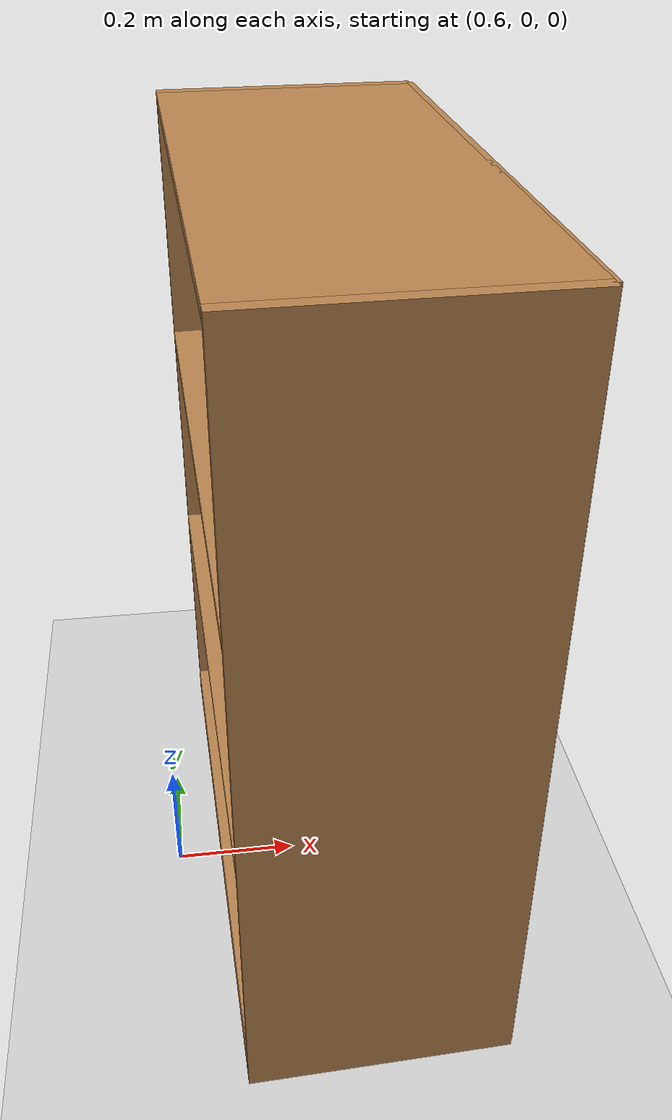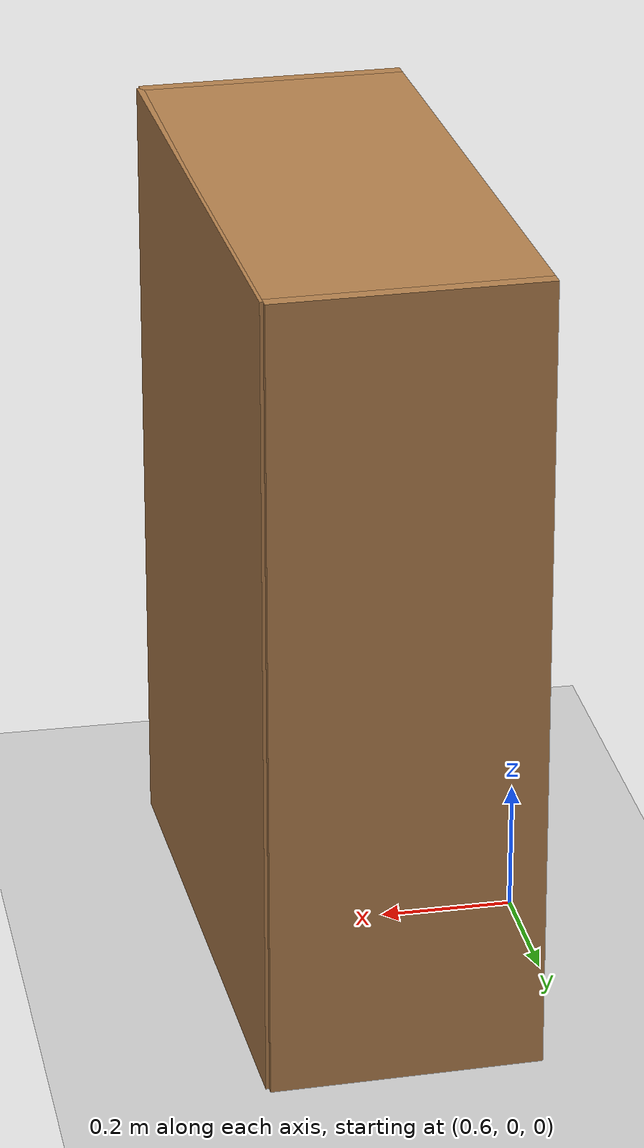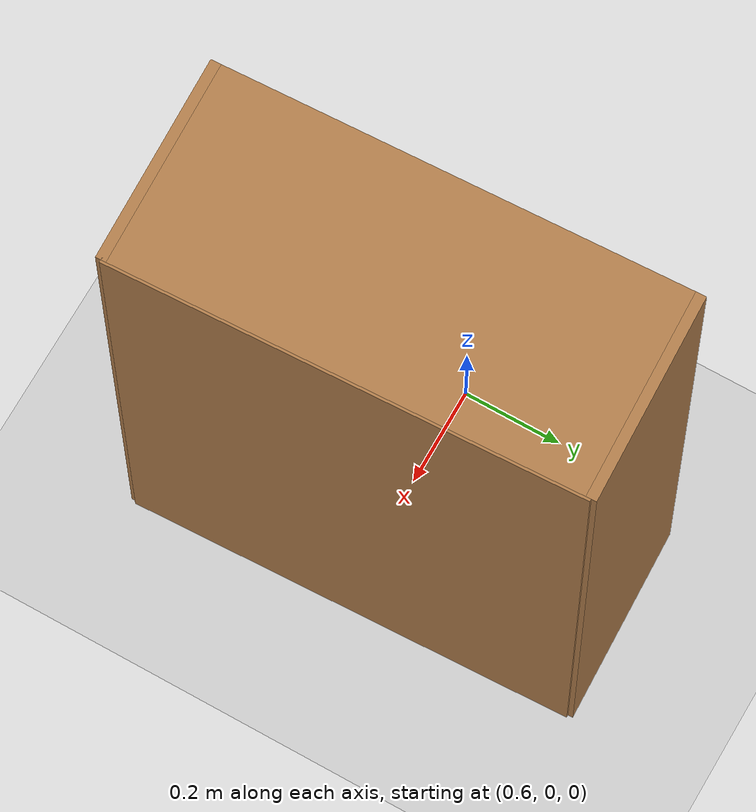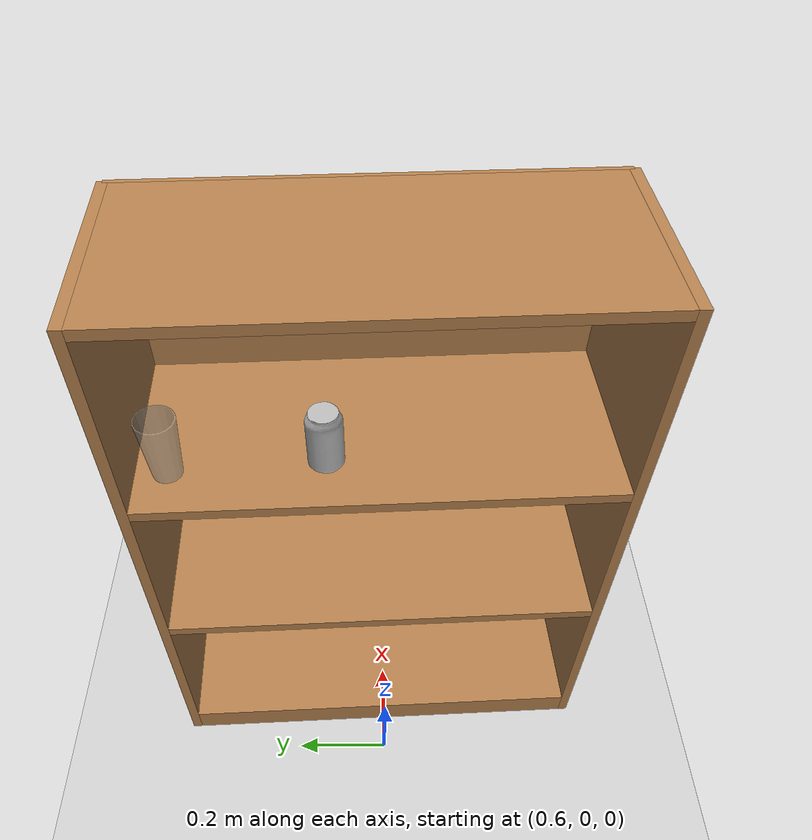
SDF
<sdf version="1.7">
 <world name="default">
  <light name="sun" type="directional">
   <pose>0 0 10 0 -0 0</pose>
   <diffuse>0.8 0.8 0.8 1</diffuse>
   <specular>0.2 0.2 0.2 1</specular>
   <attenuation>
    <range>1000</range>
    <constant>0.9</constant>
    <linear>0.01</linear>
    <quadratic>0.001</quadratic>
   </attenuation>
   <direction>-0.5 0.1 -0.9</direction>
   <spot><inner_angle>0</inner_angle><outer_angle>0</outer_angle><falloff>0</falloff></spot>
  </light>
  <model name="ground_plane">
   <static>1</static>
   <link name="link">
    <collision name="collision">
     <geometry><plane><normal>0 0 1</normal><size>100 100</size></plane></geometry>
     <surface>
      <contact><collide_bitmask>65535</collide_bitmask></contact>
      <friction><ode><mu>100</mu><mu2>50</mu2></ode></friction>
     </surface>
    </collision>
    <visual name="visual">
     <cast_shadows>0</cast_shadows>
     <geometry><plane><normal>0 0 1</normal><size>100 100</size></plane></geometry>
     <material>
      <script><uri>file://media/materials/scripts/gazebo.material</uri><name>Gazebo/Grey</name></script>
     </material>
    </visual>
   </link>
  </model>
  <gravity>0 0 -9.8</gravity>
  <magnetic_field>6e-06 2.3e-05 -4.2e-05</magnetic_field>
  <atmosphere type="adiabatic"/>
  <physics type="ode">
   <max_step_size>0.001</max_step_size>
   <real_time_factor>1</real_time_factor>
   <real_time_update_rate>1000</real_time_update_rate>
  </physics>
  <scene><ambient>0.4 0.4 0.4 1</ambient><background>0.7 0.7 0.7 1</background><shadows>1</shadows></scene>
  <spherical_coordinates>
   <surface_model>EARTH_WGS84</surface_model>
   <latitude_deg>0</latitude_deg>
   <longitude_deg>0</longitude_deg>
   <elevation>0</elevation>
   <heading_deg>0</heading_deg>
  </spherical_coordinates>
  <model name="bookshelf">
   <static>1</static>
   <link name="link">
    <inertial><mass>1</mass></inertial>
    <collision name="back">
     <pose>0 0.005 0.6 0 -0 0</pose>
     <geometry><box><size>0.9 0.01 1.2</size></box></geometry>
    </collision>
    <visual name="visual1">
     <pose>0 0.005 0.6 0 -0 0</pose>
     <geometry><box><size>0.9 0.01 1.2</size></box></geometry>
     <material>
      <script><uri>file://media/materials/scripts/gazebo.material</uri><name>Gazebo/Wood</name></script>
     </material>
    </visual>
    <collision name="left_side">
     <pose>0.45 -0.195 0.6 0 -0 0</pose>
     <geometry><box><size>0.02 0.4 1.2</size></box></geometry>
    </collision>
    <visual name="visual2">
     <pose>0.45 -0.195 0.6 0 -0 0</pose>
     <geometry><box><size>0.02 0.4 1.2</size></box></geometry>
     <material>
      <script><uri>file://media/materials/scripts/gazebo.material</uri><name>Gazebo/Wood</name></script>
     </material>
    </visual>
    <collision name="right_side">
     <pose>-0.45 -0.195 0.6 0 -0 0</pose>
     <geometry><box><size>0.02 0.4 1.2</size></box></geometry>
    </collision>
    <visual name="visual3">
     <pose>-0.45 -0.195 0.6 0 -0 0</pose>
     <geometry><box><size>0.02 0.4 1.2</size></box></geometry>
     <material>
      <script><uri>file://media/materials/scripts/gazebo.material</uri><name>Gazebo/Wood</name></script>
     </material>
    </visual>
    <collision name="bottom">
     <pose>0 -0.195 0.03 0 -0 0</pose>
     <geometry><box><size>0.88 0.4 0.06</size></box></geometry>
    </collision>
    <visual name="visual4">
     <pose>0 -0.195 0.03 0 -0 0</pose>
     <geometry><box><size>0.88 0.4 0.06</size></box></geometry>
     <material>
      <script><uri>file://media/materials/scripts/gazebo.material</uri><name>Gazebo/Wood</name></script>
     </material>
    </visual>
    <collision name="top">
     <pose>0 -0.195 1.19 0 -0 0</pose>
     <geometry><box><size>0.88 0.4 0.02</size></box></geometry>
    </collision>
    <visual name="visual5">
     <pose>0 -0.195 1.19 0 -0 0</pose>
     <geometry><box><size>0.88 0.4 0.02</size></box></geometry>
     <material>
      <script><uri>file://media/materials/scripts/gazebo.material</uri><name>Gazebo/Wood</name></script>
     </material>
    </visual>
    <collision name="low_shelf">
     <pose>0 -0.195 0.43 0 -0 0</pose>
     <geometry><box><size>0.88 0.4 0.02</size></box></geometry>
    </collision>
    <visual name="visual6">
     <pose>0 -0.195 0.43 0 -0 0</pose>
     <geometry><box><size>0.88 0.4 0.02</size></box></geometry>
     <material>
      <script><uri>file://media/materials/scripts/gazebo.material</uri><name>Gazebo/Wood</name></script>
     </material>
    </visual>
    <collision name="high_shelf">
     <pose>0 -0.195 0.8 0 -0 0</pose>
     <geometry><box><size>0.88 0.4 0.02</size></box></geometry>
    </collision>
    <visual name="visual7">
     <pose>0 -0.195 0.8 0 -0 0</pose>
     <geometry><box><size>0.88 0.4 0.02</size></box></geometry>
     <material>
      <script><uri>file://media/materials/scripts/gazebo.material</uri><name>Gazebo/Wood</name></script>
     </material>
    </visual>
   </link>
   <pose>1.067 0.02007 0 0 0 -1.53533</pose>
  </model>
  <model name="coke_can_1">
   <link name="link">
    <inertial>
     <pose>0 0 0.06 0 -0 0</pose>
     <mass>0.39</mass>
     <inertia>
      <ixx>0.00055575</ixx>
      <ixy>0</ixy>
      <ixz>0</ixz>
      <iyy>0.00055575</iyy>
      <iyz>0</iyz>
      <izz>0.0001755</izz>
     </inertia>
    </inertial>
    <collision name="collision">
     <pose>0.003937 0.004724 -0.18 0 -0 0</pose>
     <geometry><mesh><uri>model://coke_can/meshes/coke_can.dae</uri></mesh></geometry>
     <surface>
      <friction><ode><mu>1</mu><mu2>1</mu2></ode></friction>
      <contact><ode><kp>1e+07</kp><kd>1</kd><min_depth>0.001</min_depth><max_vel>0.1</max_vel></ode></contact>
     </surface>
    </collision>
    <visual name="visual">
     <pose>0.003937 0.004724 -0.18 0 -0 0</pose>
     <geometry><mesh><uri>model://coke_can/meshes/coke_can.dae</uri></mesh></geometry>
    </visual>
   </link>
   <pose>0.767816 0.106413 0.81306 -0.007271 0.002605 -0.001563</pose>
  </model>
  <model name="plastic_cup">
   <link name="link">
    <pose>0 0 0.065 0 -0 0</pose>
    <inertial>
     <mass>0.0599</mass>
     <inertia>
      <ixx>0.000302896</ixx>
      <ixy>0</ixy>
      <ixz>0</ixz>
      <iyy>0.000302896</iyy>
      <iyz>0</iyz>
      <izz>3.28764e-05</izz>
     </inertia>
    </inertial>
    <collision name="collision">
     <geometry><mesh><uri>model://plastic_cup/meshes/plastic_cup.dae</uri></mesh></geometry>
     <surface>
      <contact>
       <poissons_ratio>0.35</poissons_ratio>
       <elastic_modulus>3.10264e+09</elastic_modulus>
       <ode><kp>100000</kp><kd>100</kd><max_vel>100</max_vel><min_depth>0.001</min_depth></ode>
      </contact>
      <friction>
       <torsional>
        <coefficient>1</coefficient>
        <use_patch_radius>0</use_patch_radius>
        <surface_radius>0.01</surface_radius>
       </torsional>
      </friction>
     </surface>
    </collision>
    <visual name="visual">
     <geometry><mesh><uri>model://plastic_cup/meshes/plastic_cup.dae</uri></mesh></geometry>
     <material>
      <script><uri>file://media/materials/scripts/gazebo.material</uri><name>Gazebo/GreyTransparent</name></script>
     </material>
    </visual>
   </link>
   <pose>0.754213 0.381906 0.816645 3.4e-05 -3.1e-05 -0.000176</pose>
  </model>
 </world>
</sdf>
